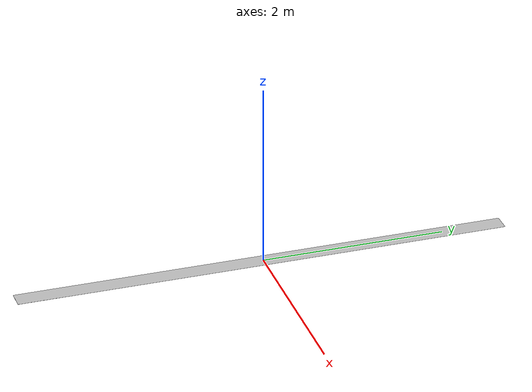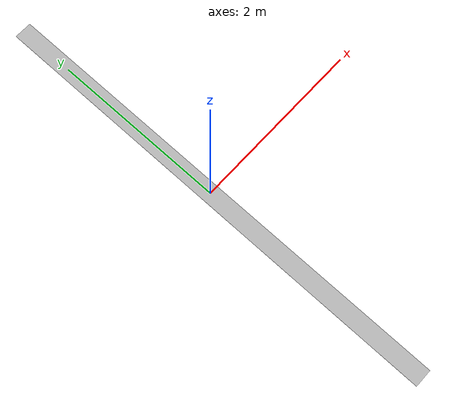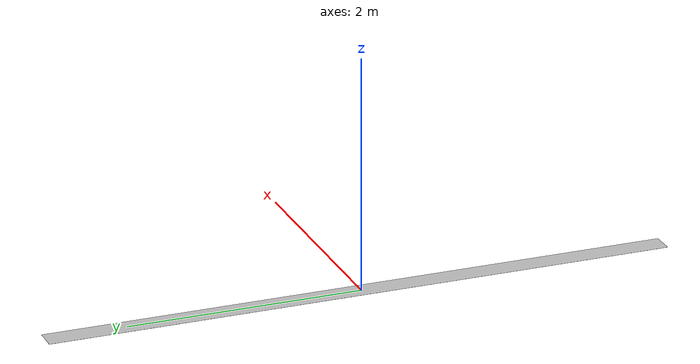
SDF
<?xml version="1.0"?>
<sdf version="1.5">
<model name="street">
  <static>true</static>
    <link name="street_link">
    <pose>0 0 1e-3 0 0 1.5707963267948966</pose>
        <geometry>
          <box>
            <size>5.37 0.2 1e-3</size>
          </box>
        </geometry>
      <visual name="visual_street">
        <cast_shadows>false</cast_shadows>
        <geometry>
          <box>
            <size>5.37 0.2 1e-3</size>
          </box>
        </geometry>
        <material>
          <script>
            <uri>model://street/materials/scripts/model.material</uri>
            <name>street/street_FIRA</name>
          </script>
        </material>
      </visual>
    </link>
  </model>
</sdf>
